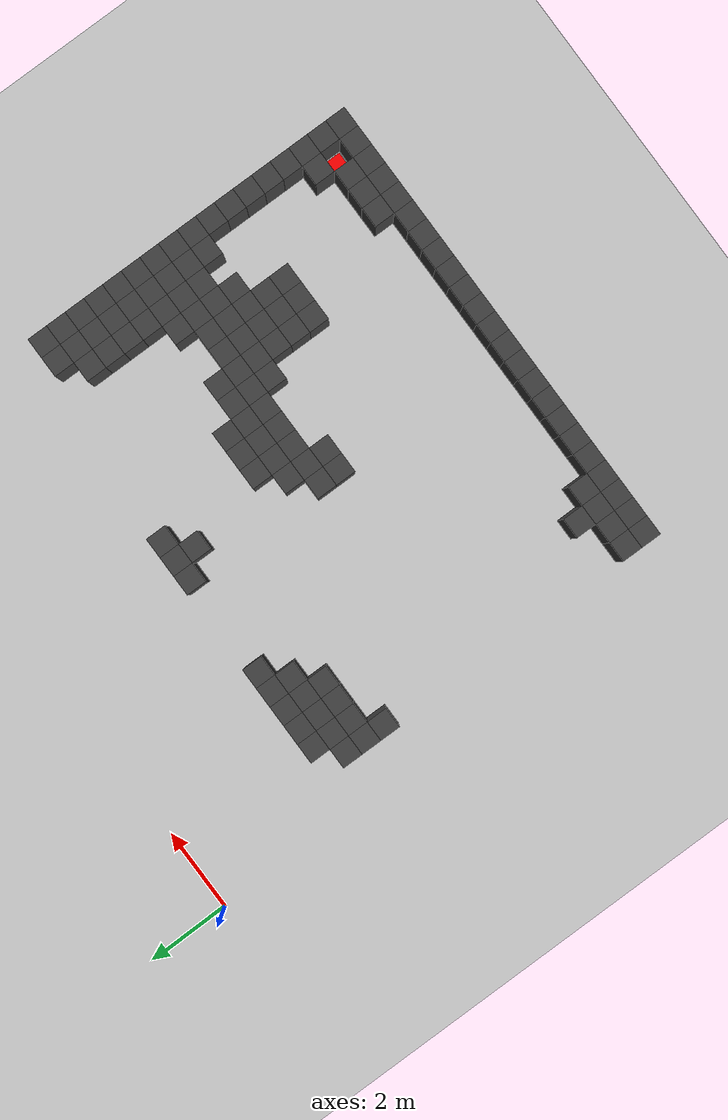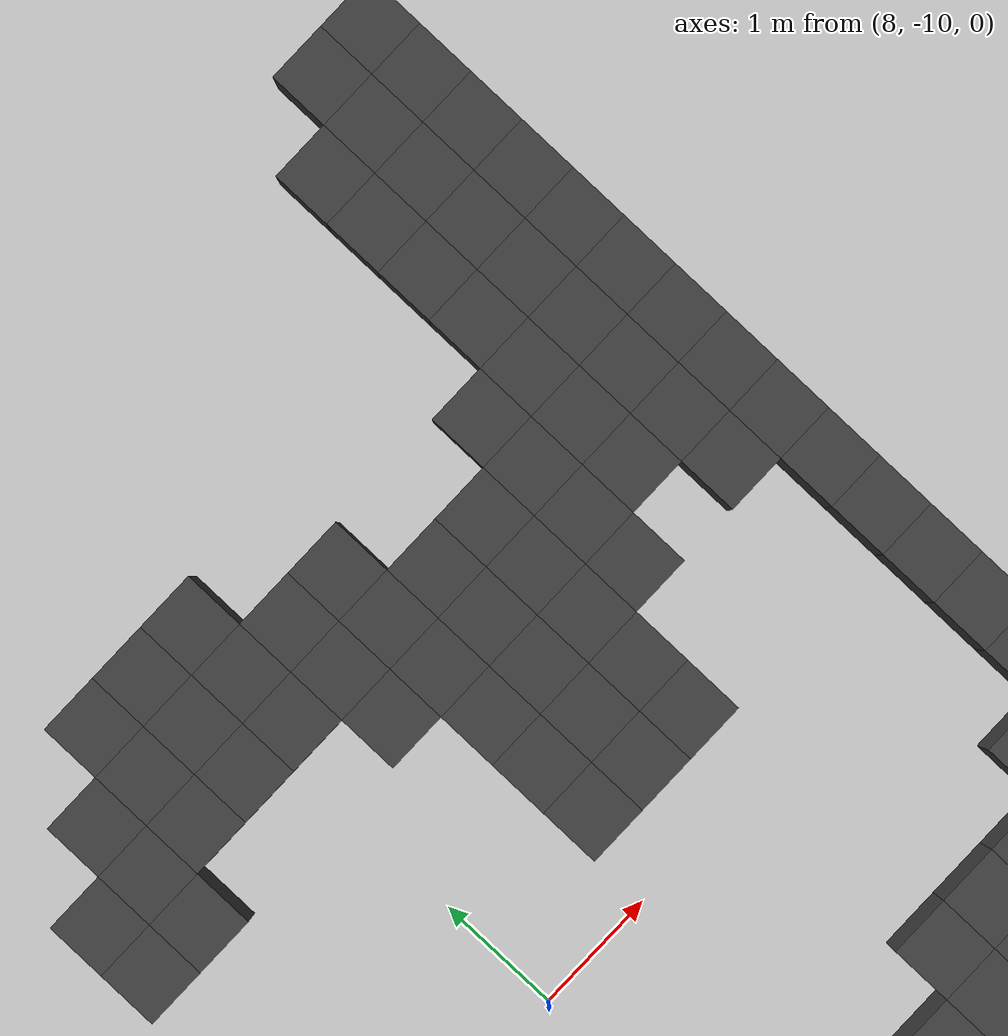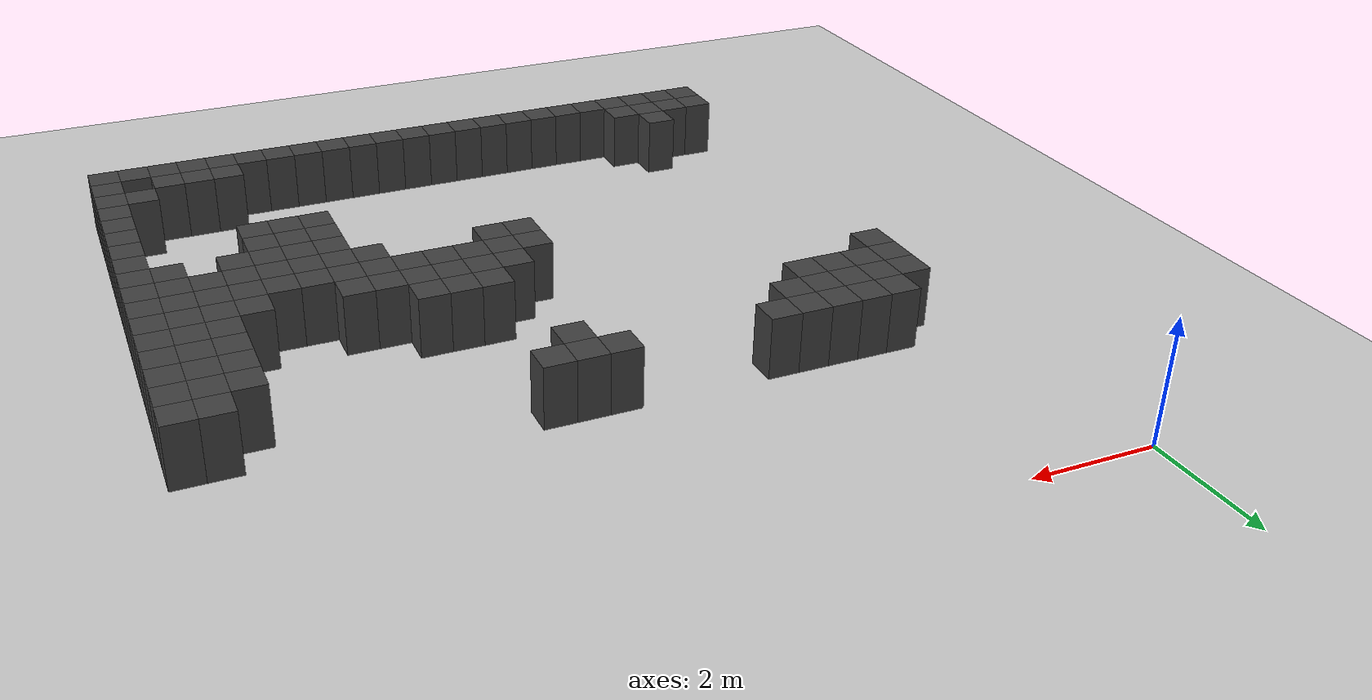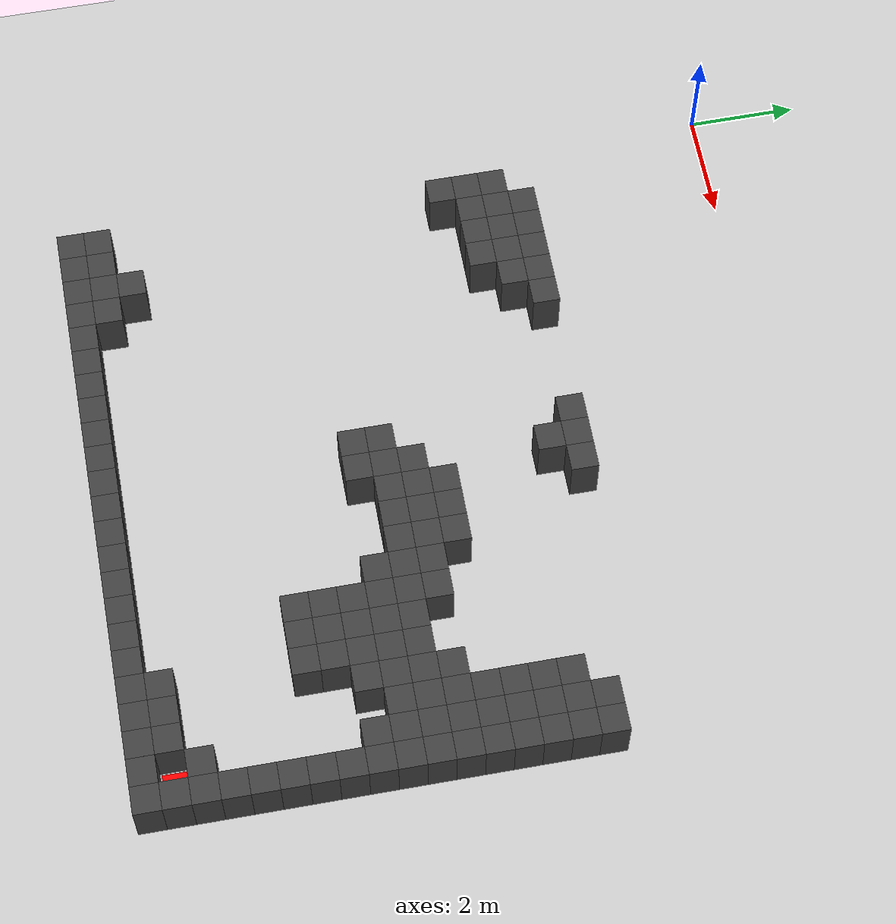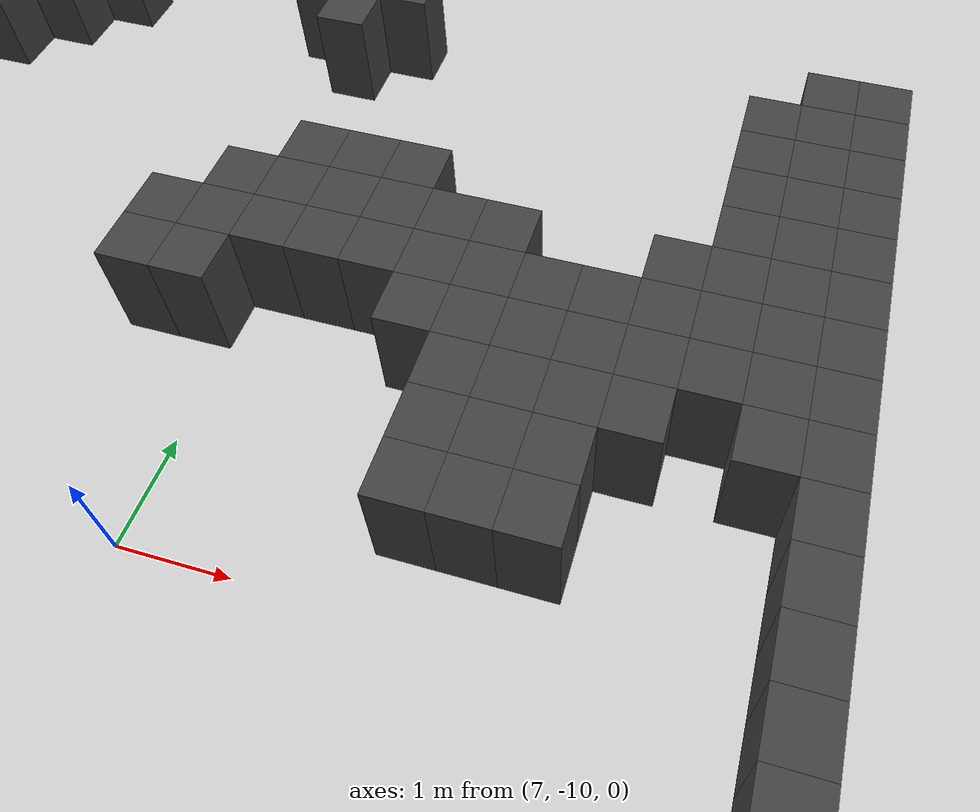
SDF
<sdf version="1.7">
 <world name="map_8661">
  <model name="ground_plane">
   <static>true</static>
   <link name="link">
    <collision name="collision">
     <geometry><plane><normal>0 0 1</normal><size>200 200</size></plane></geometry>
    </collision>
    <visual name="visual">
     <geometry><plane><normal>0 0 1</normal><size>200 200</size></plane></geometry>
     <material><ambient>0.8 0.8 0.8 1</ambient><diffuse>0.8 0.8 0.8 1</diffuse></material>
    </visual>
   </link>
  </model>
  <model name="maze_environment">
   <static>true</static>
   <link name="wall_462">
    <pose>1.750 -3.750 0.500 0 0 0</pose>
    <collision name="col"><geometry><box><size>0.5 0.5 1.0</size></box></geometry></collision>
    <visual name="vis">
     <geometry><box><size>0.5 0.5 1.0</size></box></geometry>
     <material><ambient>0.15 0.15 0.15 1</ambient><diffuse>0.25 0.25 0.25 1</diffuse></material>
    </visual>
   </link>
   <link name="wall_463">
    <pose>2.250 -3.750 0.500 0 0 0</pose>
    <collision name="col"><geometry><box><size>0.5 0.5 1.0</size></box></geometry></collision>
    <visual name="vis">
     <geometry><box><size>0.5 0.5 1.0</size></box></geometry>
     <material><ambient>0.15 0.15 0.15 1</ambient><diffuse>0.25 0.25 0.25 1</diffuse></material>
    </visual>
   </link>
   <link name="wall_464">
    <pose>2.750 -3.750 0.500 0 0 0</pose>
    <collision name="col"><geometry><box><size>0.5 0.5 1.0</size></box></geometry></collision>
    <visual name="vis">
     <geometry><box><size>0.5 0.5 1.0</size></box></geometry>
     <material><ambient>0.15 0.15 0.15 1</ambient><diffuse>0.25 0.25 0.25 1</diffuse></material>
    </visual>
   </link>
   <link name="wall_465">
    <pose>3.250 -3.750 0.500 0 0 0</pose>
    <collision name="col"><geometry><box><size>0.5 0.5 1.0</size></box></geometry></collision>
    <visual name="vis">
     <geometry><box><size>0.5 0.5 1.0</size></box></geometry>
     <material><ambient>0.15 0.15 0.15 1</ambient><diffuse>0.25 0.25 0.25 1</diffuse></material>
    </visual>
   </link>
   <link name="wall_466">
    <pose>3.750 -3.750 0.500 0 0 0</pose>
    <collision name="col"><geometry><box><size>0.5 0.5 1.0</size></box></geometry></collision>
    <visual name="vis">
     <geometry><box><size>0.5 0.5 1.0</size></box></geometry>
     <material><ambient>0.15 0.15 0.15 1</ambient><diffuse>0.25 0.25 0.25 1</diffuse></material>
    </visual>
   </link>
   <link name="wall_467">
    <pose>6.250 -3.750 0.500 0 0 0</pose>
    <collision name="col"><geometry><box><size>0.5 0.5 1.0</size></box></geometry></collision>
    <visual name="vis">
     <geometry><box><size>0.5 0.5 1.0</size></box></geometry>
     <material><ambient>0.15 0.15 0.15 1</ambient><diffuse>0.25 0.25 0.25 1</diffuse></material>
    </visual>
   </link>
   <link name="wall_468">
    <pose>6.750 -3.750 0.500 0 0 0</pose>
    <collision name="col"><geometry><box><size>0.5 0.5 1.0</size></box></geometry></collision>
    <visual name="vis">
     <geometry><box><size>0.5 0.5 1.0</size></box></geometry>
     <material><ambient>0.15 0.15 0.15 1</ambient><diffuse>0.25 0.25 0.25 1</diffuse></material>
    </visual>
   </link>
   <link name="wall_469">
    <pose>7.250 -3.750 0.500 0 0 0</pose>
    <collision name="col"><geometry><box><size>0.5 0.5 1.0</size></box></geometry></collision>
    <visual name="vis">
     <geometry><box><size>0.5 0.5 1.0</size></box></geometry>
     <material><ambient>0.15 0.15 0.15 1</ambient><diffuse>0.25 0.25 0.25 1</diffuse></material>
    </visual>
   </link>
   <link name="wall_478">
    <pose>1.250 -4.250 0.500 0 0 0</pose>
    <collision name="col"><geometry><box><size>0.5 0.5 1.0</size></box></geometry></collision>
    <visual name="vis">
     <geometry><box><size>0.5 0.5 1.0</size></box></geometry>
     <material><ambient>0.15 0.15 0.15 1</ambient><diffuse>0.25 0.25 0.25 1</diffuse></material>
    </visual>
   </link>
   <link name="wall_479">
    <pose>1.750 -4.250 0.500 0 0 0</pose>
    <collision name="col"><geometry><box><size>0.5 0.5 1.0</size></box></geometry></collision>
    <visual name="vis">
     <geometry><box><size>0.5 0.5 1.0</size></box></geometry>
     <material><ambient>0.15 0.15 0.15 1</ambient><diffuse>0.25 0.25 0.25 1</diffuse></material>
    </visual>
   </link>
   <link name="wall_480">
    <pose>2.250 -4.250 0.500 0 0 0</pose>
    <collision name="col"><geometry><box><size>0.5 0.5 1.0</size></box></geometry></collision>
    <visual name="vis">
     <geometry><box><size>0.5 0.5 1.0</size></box></geometry>
     <material><ambient>0.15 0.15 0.15 1</ambient><diffuse>0.25 0.25 0.25 1</diffuse></material>
    </visual>
   </link>
   <link name="wall_481">
    <pose>2.750 -4.250 0.500 0 0 0</pose>
    <collision name="col"><geometry><box><size>0.5 0.5 1.0</size></box></geometry></collision>
    <visual name="vis">
     <geometry><box><size>0.5 0.5 1.0</size></box></geometry>
     <material><ambient>0.15 0.15 0.15 1</ambient><diffuse>0.25 0.25 0.25 1</diffuse></material>
    </visual>
   </link>
   <link name="wall_482">
    <pose>3.250 -4.250 0.500 0 0 0</pose>
    <collision name="col"><geometry><box><size>0.5 0.5 1.0</size></box></geometry></collision>
    <visual name="vis">
     <geometry><box><size>0.5 0.5 1.0</size></box></geometry>
     <material><ambient>0.15 0.15 0.15 1</ambient><diffuse>0.25 0.25 0.25 1</diffuse></material>
    </visual>
   </link>
   <link name="wall_483">
    <pose>6.750 -4.250 0.500 0 0 0</pose>
    <collision name="col"><geometry><box><size>0.5 0.5 1.0</size></box></geometry></collision>
    <visual name="vis">
     <geometry><box><size>0.5 0.5 1.0</size></box></geometry>
     <material><ambient>0.15 0.15 0.15 1</ambient><diffuse>0.25 0.25 0.25 1</diffuse></material>
    </visual>
   </link>
   <link name="wall_484">
    <pose>11.750 -4.250 0.500 0 0 0</pose>
    <collision name="col"><geometry><box><size>0.5 0.5 1.0</size></box></geometry></collision>
    <visual name="vis">
     <geometry><box><size>0.5 0.5 1.0</size></box></geometry>
     <material><ambient>0.15 0.15 0.15 1</ambient><diffuse>0.25 0.25 0.25 1</diffuse></material>
    </visual>
   </link>
   <link name="wall_485">
    <pose>12.250 -4.250 0.500 0 0 0</pose>
    <collision name="col"><geometry><box><size>0.5 0.5 1.0</size></box></geometry></collision>
    <visual name="vis">
     <geometry><box><size>0.5 0.5 1.0</size></box></geometry>
     <material><ambient>0.15 0.15 0.15 1</ambient><diffuse>0.25 0.25 0.25 1</diffuse></material>
    </visual>
   </link>
   <link name="wall_493">
    <pose>1.250 -4.750 0.500 0 0 0</pose>
    <collision name="col"><geometry><box><size>0.5 0.5 1.0</size></box></geometry></collision>
    <visual name="vis">
     <geometry><box><size>0.5 0.5 1.0</size></box></geometry>
     <material><ambient>0.15 0.15 0.15 1</ambient><diffuse>0.25 0.25 0.25 1</diffuse></material>
    </visual>
   </link>
   <link name="wall_494">
    <pose>1.750 -4.750 0.500 0 0 0</pose>
    <collision name="col"><geometry><box><size>0.5 0.5 1.0</size></box></geometry></collision>
    <visual name="vis">
     <geometry><box><size>0.5 0.5 1.0</size></box></geometry>
     <material><ambient>0.15 0.15 0.15 1</ambient><diffuse>0.25 0.25 0.25 1</diffuse></material>
    </visual>
   </link>
   <link name="wall_495">
    <pose>2.250 -4.750 0.500 0 0 0</pose>
    <collision name="col"><geometry><box><size>0.5 0.5 1.0</size></box></geometry></collision>
    <visual name="vis">
     <geometry><box><size>0.5 0.5 1.0</size></box></geometry>
     <material><ambient>0.15 0.15 0.15 1</ambient><diffuse>0.25 0.25 0.25 1</diffuse></material>
    </visual>
   </link>
   <link name="wall_496">
    <pose>2.750 -4.750 0.500 0 0 0</pose>
    <collision name="col"><geometry><box><size>0.5 0.5 1.0</size></box></geometry></collision>
    <visual name="vis">
     <geometry><box><size>0.5 0.5 1.0</size></box></geometry>
     <material><ambient>0.15 0.15 0.15 1</ambient><diffuse>0.25 0.25 0.25 1</diffuse></material>
    </visual>
   </link>
   <link name="wall_497">
    <pose>11.250 -4.750 0.500 0 0 0</pose>
    <collision name="col"><geometry><box><size>0.5 0.5 1.0</size></box></geometry></collision>
    <visual name="vis">
     <geometry><box><size>0.5 0.5 1.0</size></box></geometry>
     <material><ambient>0.15 0.15 0.15 1</ambient><diffuse>0.25 0.25 0.25 1</diffuse></material>
    </visual>
   </link>
   <link name="wall_498">
    <pose>11.750 -4.750 0.500 0 0 0</pose>
    <collision name="col"><geometry><box><size>0.5 0.5 1.0</size></box></geometry></collision>
    <visual name="vis">
     <geometry><box><size>0.5 0.5 1.0</size></box></geometry>
     <material><ambient>0.15 0.15 0.15 1</ambient><diffuse>0.25 0.25 0.25 1</diffuse></material>
    </visual>
   </link>
   <link name="wall_499">
    <pose>12.250 -4.750 0.500 0 0 0</pose>
    <collision name="col"><geometry><box><size>0.5 0.5 1.0</size></box></geometry></collision>
    <visual name="vis">
     <geometry><box><size>0.5 0.5 1.0</size></box></geometry>
     <material><ambient>0.15 0.15 0.15 1</ambient><diffuse>0.25 0.25 0.25 1</diffuse></material>
    </visual>
   </link>
   <link name="wall_508">
    <pose>1.250 -5.250 0.500 0 0 0</pose>
    <collision name="col"><geometry><box><size>0.5 0.5 1.0</size></box></geometry></collision>
    <visual name="vis">
     <geometry><box><size>0.5 0.5 1.0</size></box></geometry>
     <material><ambient>0.15 0.15 0.15 1</ambient><diffuse>0.25 0.25 0.25 1</diffuse></material>
    </visual>
   </link>
   <link name="wall_509">
    <pose>11.250 -5.250 0.500 0 0 0</pose>
    <collision name="col"><geometry><box><size>0.5 0.5 1.0</size></box></geometry></collision>
    <visual name="vis">
     <geometry><box><size>0.5 0.5 1.0</size></box></geometry>
     <material><ambient>0.15 0.15 0.15 1</ambient><diffuse>0.25 0.25 0.25 1</diffuse></material>
    </visual>
   </link>
   <link name="wall_510">
    <pose>11.750 -5.250 0.500 0 0 0</pose>
    <collision name="col"><geometry><box><size>0.5 0.5 1.0</size></box></geometry></collision>
    <visual name="vis">
     <geometry><box><size>0.5 0.5 1.0</size></box></geometry>
     <material><ambient>0.15 0.15 0.15 1</ambient><diffuse>0.25 0.25 0.25 1</diffuse></material>
    </visual>
   </link>
   <link name="wall_511">
    <pose>12.250 -5.250 0.500 0 0 0</pose>
    <collision name="col"><geometry><box><size>0.5 0.5 1.0</size></box></geometry></collision>
    <visual name="vis">
     <geometry><box><size>0.5 0.5 1.0</size></box></geometry>
     <material><ambient>0.15 0.15 0.15 1</ambient><diffuse>0.25 0.25 0.25 1</diffuse></material>
    </visual>
   </link>
   <link name="wall_520">
    <pose>11.250 -5.750 0.500 0 0 0</pose>
    <collision name="col"><geometry><box><size>0.5 0.5 1.0</size></box></geometry></collision>
    <visual name="vis">
     <geometry><box><size>0.5 0.5 1.0</size></box></geometry>
     <material><ambient>0.15 0.15 0.15 1</ambient><diffuse>0.25 0.25 0.25 1</diffuse></material>
    </visual>
   </link>
   <link name="wall_521">
    <pose>11.750 -5.750 0.500 0 0 0</pose>
    <collision name="col"><geometry><box><size>0.5 0.5 1.0</size></box></geometry></collision>
    <visual name="vis">
     <geometry><box><size>0.5 0.5 1.0</size></box></geometry>
     <material><ambient>0.15 0.15 0.15 1</ambient><diffuse>0.25 0.25 0.25 1</diffuse></material>
    </visual>
   </link>
   <link name="wall_522">
    <pose>12.250 -5.750 0.500 0 0 0</pose>
    <collision name="col"><geometry><box><size>0.5 0.5 1.0</size></box></geometry></collision>
    <visual name="vis">
     <geometry><box><size>0.5 0.5 1.0</size></box></geometry>
     <material><ambient>0.15 0.15 0.15 1</ambient><diffuse>0.25 0.25 0.25 1</diffuse></material>
    </visual>
   </link>
   <link name="wall_531">
    <pose>7.250 -6.250 0.500 0 0 0</pose>
    <collision name="col"><geometry><box><size>0.5 0.5 1.0</size></box></geometry></collision>
    <visual name="vis">
     <geometry><box><size>0.5 0.5 1.0</size></box></geometry>
     <material><ambient>0.15 0.15 0.15 1</ambient><diffuse>0.25 0.25 0.25 1</diffuse></material>
    </visual>
   </link>
   <link name="wall_532">
    <pose>7.750 -6.250 0.500 0 0 0</pose>
    <collision name="col"><geometry><box><size>0.5 0.5 1.0</size></box></geometry></collision>
    <visual name="vis">
     <geometry><box><size>0.5 0.5 1.0</size></box></geometry>
     <material><ambient>0.15 0.15 0.15 1</ambient><diffuse>0.25 0.25 0.25 1</diffuse></material>
    </visual>
   </link>
   <link name="wall_533">
    <pose>8.250 -6.250 0.500 0 0 0</pose>
    <collision name="col"><geometry><box><size>0.5 0.5 1.0</size></box></geometry></collision>
    <visual name="vis">
     <geometry><box><size>0.5 0.5 1.0</size></box></geometry>
     <material><ambient>0.15 0.15 0.15 1</ambient><diffuse>0.25 0.25 0.25 1</diffuse></material>
    </visual>
   </link>
   <link name="wall_534">
    <pose>11.250 -6.250 0.500 0 0 0</pose>
    <collision name="col"><geometry><box><size>0.5 0.5 1.0</size></box></geometry></collision>
    <visual name="vis">
     <geometry><box><size>0.5 0.5 1.0</size></box></geometry>
     <material><ambient>0.15 0.15 0.15 1</ambient><diffuse>0.25 0.25 0.25 1</diffuse></material>
    </visual>
   </link>
   <link name="wall_535">
    <pose>11.750 -6.250 0.500 0 0 0</pose>
    <collision name="col"><geometry><box><size>0.5 0.5 1.0</size></box></geometry></collision>
    <visual name="vis">
     <geometry><box><size>0.5 0.5 1.0</size></box></geometry>
     <material><ambient>0.15 0.15 0.15 1</ambient><diffuse>0.25 0.25 0.25 1</diffuse></material>
    </visual>
   </link>
   <link name="wall_536">
    <pose>12.250 -6.250 0.500 0 0 0</pose>
    <collision name="col"><geometry><box><size>0.5 0.5 1.0</size></box></geometry></collision>
    <visual name="vis">
     <geometry><box><size>0.5 0.5 1.0</size></box></geometry>
     <material><ambient>0.15 0.15 0.15 1</ambient><diffuse>0.25 0.25 0.25 1</diffuse></material>
    </visual>
   </link>
   <link name="wall_545">
    <pose>6.750 -6.750 0.500 0 0 0</pose>
    <collision name="col"><geometry><box><size>0.5 0.5 1.0</size></box></geometry></collision>
    <visual name="vis">
     <geometry><box><size>0.5 0.5 1.0</size></box></geometry>
     <material><ambient>0.15 0.15 0.15 1</ambient><diffuse>0.25 0.25 0.25 1</diffuse></material>
    </visual>
   </link>
   <link name="wall_546">
    <pose>7.250 -6.750 0.500 0 0 0</pose>
    <collision name="col"><geometry><box><size>0.5 0.5 1.0</size></box></geometry></collision>
    <visual name="vis">
     <geometry><box><size>0.5 0.5 1.0</size></box></geometry>
     <material><ambient>0.15 0.15 0.15 1</ambient><diffuse>0.25 0.25 0.25 1</diffuse></material>
    </visual>
   </link>
   <link name="wall_547">
    <pose>7.750 -6.750 0.500 0 0 0</pose>
    <collision name="col"><geometry><box><size>0.5 0.5 1.0</size></box></geometry></collision>
    <visual name="vis">
     <geometry><box><size>0.5 0.5 1.0</size></box></geometry>
     <material><ambient>0.15 0.15 0.15 1</ambient><diffuse>0.25 0.25 0.25 1</diffuse></material>
    </visual>
   </link>
   <link name="wall_548">
    <pose>8.250 -6.750 0.500 0 0 0</pose>
    <collision name="col"><geometry><box><size>0.5 0.5 1.0</size></box></geometry></collision>
    <visual name="vis">
     <geometry><box><size>0.5 0.5 1.0</size></box></geometry>
     <material><ambient>0.15 0.15 0.15 1</ambient><diffuse>0.25 0.25 0.25 1</diffuse></material>
    </visual>
   </link>
   <link name="wall_549">
    <pose>8.750 -6.750 0.500 0 0 0</pose>
    <collision name="col"><geometry><box><size>0.5 0.5 1.0</size></box></geometry></collision>
    <visual name="vis">
     <geometry><box><size>0.5 0.5 1.0</size></box></geometry>
     <material><ambient>0.15 0.15 0.15 1</ambient><diffuse>0.25 0.25 0.25 1</diffuse></material>
    </visual>
   </link>
   <link name="wall_550">
    <pose>9.250 -6.750 0.500 0 0 0</pose>
    <collision name="col"><geometry><box><size>0.5 0.5 1.0</size></box></geometry></collision>
    <visual name="vis">
     <geometry><box><size>0.5 0.5 1.0</size></box></geometry>
     <material><ambient>0.15 0.15 0.15 1</ambient><diffuse>0.25 0.25 0.25 1</diffuse></material>
    </visual>
   </link>
   <link name="wall_551">
    <pose>10.750 -6.750 0.500 0 0 0</pose>
    <collision name="col"><geometry><box><size>0.5 0.5 1.0</size></box></geometry></collision>
    <visual name="vis">
     <geometry><box><size>0.5 0.5 1.0</size></box></geometry>
     <material><ambient>0.15 0.15 0.15 1</ambient><diffuse>0.25 0.25 0.25 1</diffuse></material>
    </visual>
   </link>
   <link name="wall_552">
    <pose>11.250 -6.750 0.500 0 0 0</pose>
    <collision name="col"><geometry><box><size>0.5 0.5 1.0</size></box></geometry></collision>
    <visual name="vis">
     <geometry><box><size>0.5 0.5 1.0</size></box></geometry>
     <material><ambient>0.15 0.15 0.15 1</ambient><diffuse>0.25 0.25 0.25 1</diffuse></material>
    </visual>
   </link>
   <link name="wall_553">
    <pose>11.750 -6.750 0.500 0 0 0</pose>
    <collision name="col"><geometry><box><size>0.5 0.5 1.0</size></box></geometry></collision>
    <visual name="vis">
     <geometry><box><size>0.5 0.5 1.0</size></box></geometry>
     <material><ambient>0.15 0.15 0.15 1</ambient><diffuse>0.25 0.25 0.25 1</diffuse></material>
    </visual>
   </link>
   <link name="wall_554">
    <pose>12.250 -6.750 0.500 0 0 0</pose>
    <collision name="col"><geometry><box><size>0.5 0.5 1.0</size></box></geometry></collision>
    <visual name="vis">
     <geometry><box><size>0.5 0.5 1.0</size></box></geometry>
     <material><ambient>0.15 0.15 0.15 1</ambient><diffuse>0.25 0.25 0.25 1</diffuse></material>
    </visual>
   </link>
   <link name="wall_564">
    <pose>6.250 -7.250 0.500 0 0 0</pose>
    <collision name="col"><geometry><box><size>0.5 0.5 1.0</size></box></geometry></collision>
    <visual name="vis">
     <geometry><box><size>0.5 0.5 1.0</size></box></geometry>
     <material><ambient>0.15 0.15 0.15 1</ambient><diffuse>0.25 0.25 0.25 1</diffuse></material>
    </visual>
   </link>
   <link name="wall_565">
    <pose>6.750 -7.250 0.500 0 0 0</pose>
    <collision name="col"><geometry><box><size>0.5 0.5 1.0</size></box></geometry></collision>
    <visual name="vis">
     <geometry><box><size>0.5 0.5 1.0</size></box></geometry>
     <material><ambient>0.15 0.15 0.15 1</ambient><diffuse>0.25 0.25 0.25 1</diffuse></material>
    </visual>
   </link>
   <link name="wall_566">
    <pose>7.250 -7.250 0.500 0 0 0</pose>
    <collision name="col"><geometry><box><size>0.5 0.5 1.0</size></box></geometry></collision>
    <visual name="vis">
     <geometry><box><size>0.5 0.5 1.0</size></box></geometry>
     <material><ambient>0.15 0.15 0.15 1</ambient><diffuse>0.25 0.25 0.25 1</diffuse></material>
    </visual>
   </link>
   <link name="wall_567">
    <pose>7.750 -7.250 0.500 0 0 0</pose>
    <collision name="col"><geometry><box><size>0.5 0.5 1.0</size></box></geometry></collision>
    <visual name="vis">
     <geometry><box><size>0.5 0.5 1.0</size></box></geometry>
     <material><ambient>0.15 0.15 0.15 1</ambient><diffuse>0.25 0.25 0.25 1</diffuse></material>
    </visual>
   </link>
   <link name="wall_568">
    <pose>8.250 -7.250 0.500 0 0 0</pose>
    <collision name="col"><geometry><box><size>0.5 0.5 1.0</size></box></geometry></collision>
    <visual name="vis">
     <geometry><box><size>0.5 0.5 1.0</size></box></geometry>
     <material><ambient>0.15 0.15 0.15 1</ambient><diffuse>0.25 0.25 0.25 1</diffuse></material>
    </visual>
   </link>
   <link name="wall_569">
    <pose>8.750 -7.250 0.500 0 0 0</pose>
    <collision name="col"><geometry><box><size>0.5 0.5 1.0</size></box></geometry></collision>
    <visual name="vis">
     <geometry><box><size>0.5 0.5 1.0</size></box></geometry>
     <material><ambient>0.15 0.15 0.15 1</ambient><diffuse>0.25 0.25 0.25 1</diffuse></material>
    </visual>
   </link>
   <link name="wall_570">
    <pose>9.250 -7.250 0.500 0 0 0</pose>
    <collision name="col"><geometry><box><size>0.5 0.5 1.0</size></box></geometry></collision>
    <visual name="vis">
     <geometry><box><size>0.5 0.5 1.0</size></box></geometry>
     <material><ambient>0.15 0.15 0.15 1</ambient><diffuse>0.25 0.25 0.25 1</diffuse></material>
    </visual>
   </link>
   <link name="wall_571">
    <pose>9.750 -7.250 0.500 0 0 0</pose>
    <collision name="col"><geometry><box><size>0.5 0.5 1.0</size></box></geometry></collision>
    <visual name="vis">
     <geometry><box><size>0.5 0.5 1.0</size></box></geometry>
     <material><ambient>0.15 0.15 0.15 1</ambient><diffuse>0.25 0.25 0.25 1</diffuse></material>
    </visual>
   </link>
   <link name="wall_572">
    <pose>10.250 -7.250 0.500 0 0 0</pose>
    <collision name="col"><geometry><box><size>0.5 0.5 1.0</size></box></geometry></collision>
    <visual name="vis">
     <geometry><box><size>0.5 0.5 1.0</size></box></geometry>
     <material><ambient>0.15 0.15 0.15 1</ambient><diffuse>0.25 0.25 0.25 1</diffuse></material>
    </visual>
   </link>
   <link name="wall_573">
    <pose>10.750 -7.250 0.500 0 0 0</pose>
    <collision name="col"><geometry><box><size>0.5 0.5 1.0</size></box></geometry></collision>
    <visual name="vis">
     <geometry><box><size>0.5 0.5 1.0</size></box></geometry>
     <material><ambient>0.15 0.15 0.15 1</ambient><diffuse>0.25 0.25 0.25 1</diffuse></material>
    </visual>
   </link>
   <link name="wall_574">
    <pose>11.250 -7.250 0.500 0 0 0</pose>
    <collision name="col"><geometry><box><size>0.5 0.5 1.0</size></box></geometry></collision>
    <visual name="vis">
     <geometry><box><size>0.5 0.5 1.0</size></box></geometry>
     <material><ambient>0.15 0.15 0.15 1</ambient><diffuse>0.25 0.25 0.25 1</diffuse></material>
    </visual>
   </link>
   <link name="wall_575">
    <pose>11.750 -7.250 0.500 0 0 0</pose>
    <collision name="col"><geometry><box><size>0.5 0.5 1.0</size></box></geometry></collision>
    <visual name="vis">
     <geometry><box><size>0.5 0.5 1.0</size></box></geometry>
     <material><ambient>0.15 0.15 0.15 1</ambient><diffuse>0.25 0.25 0.25 1</diffuse></material>
    </visual>
   </link>
   <link name="wall_576">
    <pose>12.250 -7.250 0.500 0 0 0</pose>
    <collision name="col"><geometry><box><size>0.5 0.5 1.0</size></box></geometry></collision>
    <visual name="vis">
     <geometry><box><size>0.5 0.5 1.0</size></box></geometry>
     <material><ambient>0.15 0.15 0.15 1</ambient><diffuse>0.25 0.25 0.25 1</diffuse></material>
    </visual>
   </link>
   <link name="wall_586">
    <pose>6.250 -7.750 0.500 0 0 0</pose>
    <collision name="col"><geometry><box><size>0.5 0.5 1.0</size></box></geometry></collision>
    <visual name="vis">
     <geometry><box><size>0.5 0.5 1.0</size></box></geometry>
     <material><ambient>0.15 0.15 0.15 1</ambient><diffuse>0.25 0.25 0.25 1</diffuse></material>
    </visual>
   </link>
   <link name="wall_587">
    <pose>6.750 -7.750 0.500 0 0 0</pose>
    <collision name="col"><geometry><box><size>0.5 0.5 1.0</size></box></geometry></collision>
    <visual name="vis">
     <geometry><box><size>0.5 0.5 1.0</size></box></geometry>
     <material><ambient>0.15 0.15 0.15 1</ambient><diffuse>0.25 0.25 0.25 1</diffuse></material>
    </visual>
   </link>
   <link name="wall_588">
    <pose>8.750 -7.750 0.500 0 0 0</pose>
    <collision name="col"><geometry><box><size>0.5 0.5 1.0</size></box></geometry></collision>
    <visual name="vis">
     <geometry><box><size>0.5 0.5 1.0</size></box></geometry>
     <material><ambient>0.15 0.15 0.15 1</ambient><diffuse>0.25 0.25 0.25 1</diffuse></material>
    </visual>
   </link>
   <link name="wall_589">
    <pose>9.250 -7.750 0.500 0 0 0</pose>
    <collision name="col"><geometry><box><size>0.5 0.5 1.0</size></box></geometry></collision>
    <visual name="vis">
     <geometry><box><size>0.5 0.5 1.0</size></box></geometry>
     <material><ambient>0.15 0.15 0.15 1</ambient><diffuse>0.25 0.25 0.25 1</diffuse></material>
    </visual>
   </link>
   <link name="wall_590">
    <pose>9.750 -7.750 0.500 0 0 0</pose>
    <collision name="col"><geometry><box><size>0.5 0.5 1.0</size></box></geometry></collision>
    <visual name="vis">
     <geometry><box><size>0.5 0.5 1.0</size></box></geometry>
     <material><ambient>0.15 0.15 0.15 1</ambient><diffuse>0.25 0.25 0.25 1</diffuse></material>
    </visual>
   </link>
   <link name="wall_591">
    <pose>10.250 -7.750 0.500 0 0 0</pose>
    <collision name="col"><geometry><box><size>0.5 0.5 1.0</size></box></geometry></collision>
    <visual name="vis">
     <geometry><box><size>0.5 0.5 1.0</size></box></geometry>
     <material><ambient>0.15 0.15 0.15 1</ambient><diffuse>0.25 0.25 0.25 1</diffuse></material>
    </visual>
   </link>
   <link name="wall_592">
    <pose>10.750 -7.750 0.500 0 0 0</pose>
    <collision name="col"><geometry><box><size>0.5 0.5 1.0</size></box></geometry></collision>
    <visual name="vis">
     <geometry><box><size>0.5 0.5 1.0</size></box></geometry>
     <material><ambient>0.15 0.15 0.15 1</ambient><diffuse>0.25 0.25 0.25 1</diffuse></material>
    </visual>
   </link>
   <link name="wall_593">
    <pose>11.250 -7.750 0.500 0 0 0</pose>
    <collision name="col"><geometry><box><size>0.5 0.5 1.0</size></box></geometry></collision>
    <visual name="vis">
     <geometry><box><size>0.5 0.5 1.0</size></box></geometry>
     <material><ambient>0.15 0.15 0.15 1</ambient><diffuse>0.25 0.25 0.25 1</diffuse></material>
    </visual>
   </link>
   <link name="wall_594">
    <pose>11.750 -7.750 0.500 0 0 0</pose>
    <collision name="col"><geometry><box><size>0.5 0.5 1.0</size></box></geometry></collision>
    <visual name="vis">
     <geometry><box><size>0.5 0.5 1.0</size></box></geometry>
     <material><ambient>0.15 0.15 0.15 1</ambient><diffuse>0.25 0.25 0.25 1</diffuse></material>
    </visual>
   </link>
   <link name="wall_595">
    <pose>12.250 -7.750 0.500 0 0 0</pose>
    <collision name="col"><geometry><box><size>0.5 0.5 1.0</size></box></geometry></collision>
    <visual name="vis">
     <geometry><box><size>0.5 0.5 1.0</size></box></geometry>
     <material><ambient>0.15 0.15 0.15 1</ambient><diffuse>0.25 0.25 0.25 1</diffuse></material>
    </visual>
   </link>
   <link name="wall_604">
    <pose>9.250 -8.250 0.500 0 0 0</pose>
    <collision name="col"><geometry><box><size>0.5 0.5 1.0</size></box></geometry></collision>
    <visual name="vis">
     <geometry><box><size>0.5 0.5 1.0</size></box></geometry>
     <material><ambient>0.15 0.15 0.15 1</ambient><diffuse>0.25 0.25 0.25 1</diffuse></material>
    </visual>
   </link>
   <link name="wall_605">
    <pose>9.750 -8.250 0.500 0 0 0</pose>
    <collision name="col"><geometry><box><size>0.5 0.5 1.0</size></box></geometry></collision>
    <visual name="vis">
     <geometry><box><size>0.5 0.5 1.0</size></box></geometry>
     <material><ambient>0.15 0.15 0.15 1</ambient><diffuse>0.25 0.25 0.25 1</diffuse></material>
    </visual>
   </link>
   <link name="wall_606">
    <pose>10.250 -8.250 0.500 0 0 0</pose>
    <collision name="col"><geometry><box><size>0.5 0.5 1.0</size></box></geometry></collision>
    <visual name="vis">
     <geometry><box><size>0.5 0.5 1.0</size></box></geometry>
     <material><ambient>0.15 0.15 0.15 1</ambient><diffuse>0.25 0.25 0.25 1</diffuse></material>
    </visual>
   </link>
   <link name="wall_607">
    <pose>10.750 -8.250 0.500 0 0 0</pose>
    <collision name="col"><geometry><box><size>0.5 0.5 1.0</size></box></geometry></collision>
    <visual name="vis">
     <geometry><box><size>0.5 0.5 1.0</size></box></geometry>
     <material><ambient>0.15 0.15 0.15 1</ambient><diffuse>0.25 0.25 0.25 1</diffuse></material>
    </visual>
   </link>
   <link name="wall_608">
    <pose>11.750 -8.250 0.500 0 0 0</pose>
    <collision name="col"><geometry><box><size>0.5 0.5 1.0</size></box></geometry></collision>
    <visual name="vis">
     <geometry><box><size>0.5 0.5 1.0</size></box></geometry>
     <material><ambient>0.15 0.15 0.15 1</ambient><diffuse>0.25 0.25 0.25 1</diffuse></material>
    </visual>
   </link>
   <link name="wall_609">
    <pose>12.250 -8.250 0.500 0 0 0</pose>
    <collision name="col"><geometry><box><size>0.5 0.5 1.0</size></box></geometry></collision>
    <visual name="vis">
     <geometry><box><size>0.5 0.5 1.0</size></box></geometry>
     <material><ambient>0.15 0.15 0.15 1</ambient><diffuse>0.25 0.25 0.25 1</diffuse></material>
    </visual>
   </link>
   <link name="wall_617">
    <pose>9.250 -8.750 0.500 0 0 0</pose>
    <collision name="col"><geometry><box><size>0.5 0.5 1.0</size></box></geometry></collision>
    <visual name="vis">
     <geometry><box><size>0.5 0.5 1.0</size></box></geometry>
     <material><ambient>0.15 0.15 0.15 1</ambient><diffuse>0.25 0.25 0.25 1</diffuse></material>
    </visual>
   </link>
   <link name="wall_618">
    <pose>9.750 -8.750 0.500 0 0 0</pose>
    <collision name="col"><geometry><box><size>0.5 0.5 1.0</size></box></geometry></collision>
    <visual name="vis">
     <geometry><box><size>0.5 0.5 1.0</size></box></geometry>
     <material><ambient>0.15 0.15 0.15 1</ambient><diffuse>0.25 0.25 0.25 1</diffuse></material>
    </visual>
   </link>
   <link name="wall_619">
    <pose>10.250 -8.750 0.500 0 0 0</pose>
    <collision name="col"><geometry><box><size>0.5 0.5 1.0</size></box></geometry></collision>
    <visual name="vis">
     <geometry><box><size>0.5 0.5 1.0</size></box></geometry>
     <material><ambient>0.15 0.15 0.15 1</ambient><diffuse>0.25 0.25 0.25 1</diffuse></material>
    </visual>
   </link>
   <link name="wall_620">
    <pose>12.250 -8.750 0.500 0 0 0</pose>
    <collision name="col"><geometry><box><size>0.5 0.5 1.0</size></box></geometry></collision>
    <visual name="vis">
     <geometry><box><size>0.5 0.5 1.0</size></box></geometry>
     <material><ambient>0.15 0.15 0.15 1</ambient><diffuse>0.25 0.25 0.25 1</diffuse></material>
    </visual>
   </link>
   <link name="wall_628">
    <pose>9.250 -9.250 0.500 0 0 0</pose>
    <collision name="col"><geometry><box><size>0.5 0.5 1.0</size></box></geometry></collision>
    <visual name="vis">
     <geometry><box><size>0.5 0.5 1.0</size></box></geometry>
     <material><ambient>0.15 0.15 0.15 1</ambient><diffuse>0.25 0.25 0.25 1</diffuse></material>
    </visual>
   </link>
   <link name="wall_629">
    <pose>9.750 -9.250 0.500 0 0 0</pose>
    <collision name="col"><geometry><box><size>0.5 0.5 1.0</size></box></geometry></collision>
    <visual name="vis">
     <geometry><box><size>0.5 0.5 1.0</size></box></geometry>
     <material><ambient>0.15 0.15 0.15 1</ambient><diffuse>0.25 0.25 0.25 1</diffuse></material>
    </visual>
   </link>
   <link name="wall_630">
    <pose>10.250 -9.250 0.500 0 0 0</pose>
    <collision name="col"><geometry><box><size>0.5 0.5 1.0</size></box></geometry></collision>
    <visual name="vis">
     <geometry><box><size>0.5 0.5 1.0</size></box></geometry>
     <material><ambient>0.15 0.15 0.15 1</ambient><diffuse>0.25 0.25 0.25 1</diffuse></material>
    </visual>
   </link>
   <link name="wall_631">
    <pose>12.250 -9.250 0.500 0 0 0</pose>
    <collision name="col"><geometry><box><size>0.5 0.5 1.0</size></box></geometry></collision>
    <visual name="vis">
     <geometry><box><size>0.5 0.5 1.0</size></box></geometry>
     <material><ambient>0.15 0.15 0.15 1</ambient><diffuse>0.25 0.25 0.25 1</diffuse></material>
    </visual>
   </link>
   <link name="wall_637">
    <pose>12.250 -9.750 0.500 0 0 0</pose>
    <collision name="col"><geometry><box><size>0.5 0.5 1.0</size></box></geometry></collision>
    <visual name="vis">
     <geometry><box><size>0.5 0.5 1.0</size></box></geometry>
     <material><ambient>0.15 0.15 0.15 1</ambient><diffuse>0.25 0.25 0.25 1</diffuse></material>
    </visual>
   </link>
   <link name="wall_640">
    <pose>12.250 -10.250 0.500 0 0 0</pose>
    <collision name="col"><geometry><box><size>0.5 0.5 1.0</size></box></geometry></collision>
    <visual name="vis">
     <geometry><box><size>0.5 0.5 1.0</size></box></geometry>
     <material><ambient>0.15 0.15 0.15 1</ambient><diffuse>0.25 0.25 0.25 1</diffuse></material>
    </visual>
   </link>
   <link name="wall_645">
    <pose>12.250 -10.750 0.500 0 0 0</pose>
    <collision name="col"><geometry><box><size>0.5 0.5 1.0</size></box></geometry></collision>
    <visual name="vis">
     <geometry><box><size>0.5 0.5 1.0</size></box></geometry>
     <material><ambient>0.15 0.15 0.15 1</ambient><diffuse>0.25 0.25 0.25 1</diffuse></material>
    </visual>
   </link>
   <link name="wall_651">
    <pose>2.250 -11.250 0.500 0 0 0</pose>
    <collision name="col"><geometry><box><size>0.5 0.5 1.0</size></box></geometry></collision>
    <visual name="vis">
     <geometry><box><size>0.5 0.5 1.0</size></box></geometry>
     <material><ambient>0.15 0.15 0.15 1</ambient><diffuse>0.25 0.25 0.25 1</diffuse></material>
    </visual>
   </link>
   <link name="wall_652">
    <pose>11.750 -11.250 0.500 0 0 0</pose>
    <collision name="col"><geometry><box><size>0.5 0.5 1.0</size></box></geometry></collision>
    <visual name="vis">
     <geometry><box><size>0.5 0.5 1.0</size></box></geometry>
     <material><ambient>0.15 0.15 0.15 1</ambient><diffuse>0.25 0.25 0.25 1</diffuse></material>
    </visual>
   </link>
   <link name="wall_653">
    <pose>12.250 -11.250 0.500 0 0 0</pose>
    <collision name="col"><geometry><box><size>0.5 0.5 1.0</size></box></geometry></collision>
    <visual name="vis">
     <geometry><box><size>0.5 0.5 1.0</size></box></geometry>
     <material><ambient>0.15 0.15 0.15 1</ambient><diffuse>0.25 0.25 0.25 1</diffuse></material>
    </visual>
   </link>
   <link name="wall_666">
    <pose>1.250 -11.750 0.500 0 0 0</pose>
    <collision name="col"><geometry><box><size>0.5 0.5 1.0</size></box></geometry></collision>
    <visual name="vis">
     <geometry><box><size>0.5 0.5 1.0</size></box></geometry>
     <material><ambient>0.15 0.15 0.15 1</ambient><diffuse>0.25 0.25 0.25 1</diffuse></material>
    </visual>
   </link>
   <link name="wall_667">
    <pose>1.750 -11.750 0.500 0 0 0</pose>
    <collision name="col"><geometry><box><size>0.5 0.5 1.0</size></box></geometry></collision>
    <visual name="vis">
     <geometry><box><size>0.5 0.5 1.0</size></box></geometry>
     <material><ambient>0.15 0.15 0.15 1</ambient><diffuse>0.25 0.25 0.25 1</diffuse></material>
    </visual>
   </link>
   <link name="wall_668">
    <pose>2.250 -11.750 0.500 0 0 0</pose>
    <collision name="col"><geometry><box><size>0.5 0.5 1.0</size></box></geometry></collision>
    <visual name="vis">
     <geometry><box><size>0.5 0.5 1.0</size></box></geometry>
     <material><ambient>0.15 0.15 0.15 1</ambient><diffuse>0.25 0.25 0.25 1</diffuse></material>
    </visual>
   </link>
   <link name="wall_669">
    <pose>2.750 -11.750 0.500 0 0 0</pose>
    <collision name="col"><geometry><box><size>0.5 0.5 1.0</size></box></geometry></collision>
    <visual name="vis">
     <geometry><box><size>0.5 0.5 1.0</size></box></geometry>
     <material><ambient>0.15 0.15 0.15 1</ambient><diffuse>0.25 0.25 0.25 1</diffuse></material>
    </visual>
   </link>
   <link name="wall_670">
    <pose>10.250 -11.750 0.500 0 0 0</pose>
    <collision name="col"><geometry><box><size>0.5 0.5 1.0</size></box></geometry></collision>
    <visual name="vis">
     <geometry><box><size>0.5 0.5 1.0</size></box></geometry>
     <material><ambient>0.15 0.15 0.15 1</ambient><diffuse>0.25 0.25 0.25 1</diffuse></material>
    </visual>
   </link>
   <link name="wall_671">
    <pose>10.750 -11.750 0.500 0 0 0</pose>
    <collision name="col"><geometry><box><size>0.5 0.5 1.0</size></box></geometry></collision>
    <visual name="vis">
     <geometry><box><size>0.5 0.5 1.0</size></box></geometry>
     <material><ambient>0.15 0.15 0.15 1</ambient><diffuse>0.25 0.25 0.25 1</diffuse></material>
    </visual>
   </link>
   <link name="wall_672">
    <pose>11.250 -11.750 0.500 0 0 0</pose>
    <collision name="col"><geometry><box><size>0.5 0.5 1.0</size></box></geometry></collision>
    <visual name="vis">
     <geometry><box><size>0.5 0.5 1.0</size></box></geometry>
     <material><ambient>0.15 0.15 0.15 1</ambient><diffuse>0.25 0.25 0.25 1</diffuse></material>
    </visual>
   </link>
   <link name="wall_673">
    <pose>12.250 -11.750 0.500 0 0 0</pose>
    <collision name="col"><geometry><box><size>0.5 0.5 1.0</size></box></geometry></collision>
    <visual name="vis">
     <geometry><box><size>0.5 0.5 1.0</size></box></geometry>
     <material><ambient>0.15 0.15 0.15 1</ambient><diffuse>0.25 0.25 0.25 1</diffuse></material>
    </visual>
   </link>
   <link name="wall_701">
    <pose>1.250 -12.250 0.500 0 0 0</pose>
    <collision name="col"><geometry><box><size>0.5 0.5 1.0</size></box></geometry></collision>
    <visual name="vis">
     <geometry><box><size>0.5 0.5 1.0</size></box></geometry>
     <material><ambient>0.15 0.15 0.15 1</ambient><diffuse>0.25 0.25 0.25 1</diffuse></material>
    </visual>
   </link>
   <link name="wall_702">
    <pose>1.750 -12.250 0.500 0 0 0</pose>
    <collision name="col"><geometry><box><size>0.5 0.5 1.0</size></box></geometry></collision>
    <visual name="vis">
     <geometry><box><size>0.5 0.5 1.0</size></box></geometry>
     <material><ambient>0.15 0.15 0.15 1</ambient><diffuse>0.25 0.25 0.25 1</diffuse></material>
    </visual>
   </link>
   <link name="wall_703">
    <pose>2.250 -12.250 0.500 0 0 0</pose>
    <collision name="col"><geometry><box><size>0.5 0.5 1.0</size></box></geometry></collision>
    <visual name="vis">
     <geometry><box><size>0.5 0.5 1.0</size></box></geometry>
     <material><ambient>0.15 0.15 0.15 1</ambient><diffuse>0.25 0.25 0.25 1</diffuse></material>
    </visual>
   </link>
   <link name="wall_704">
    <pose>2.750 -12.250 0.500 0 0 0</pose>
    <collision name="col"><geometry><box><size>0.5 0.5 1.0</size></box></geometry></collision>
    <visual name="vis">
     <geometry><box><size>0.5 0.5 1.0</size></box></geometry>
     <material><ambient>0.15 0.15 0.15 1</ambient><diffuse>0.25 0.25 0.25 1</diffuse></material>
    </visual>
   </link>
   <link name="wall_705">
    <pose>3.250 -12.250 0.500 0 0 0</pose>
    <collision name="col"><geometry><box><size>0.5 0.5 1.0</size></box></geometry></collision>
    <visual name="vis">
     <geometry><box><size>0.5 0.5 1.0</size></box></geometry>
     <material><ambient>0.15 0.15 0.15 1</ambient><diffuse>0.25 0.25 0.25 1</diffuse></material>
    </visual>
   </link>
   <link name="wall_706">
    <pose>3.750 -12.250 0.500 0 0 0</pose>
    <collision name="col"><geometry><box><size>0.5 0.5 1.0</size></box></geometry></collision>
    <visual name="vis">
     <geometry><box><size>0.5 0.5 1.0</size></box></geometry>
     <material><ambient>0.15 0.15 0.15 1</ambient><diffuse>0.25 0.25 0.25 1</diffuse></material>
    </visual>
   </link>
   <link name="wall_707">
    <pose>4.250 -12.250 0.500 0 0 0</pose>
    <collision name="col"><geometry><box><size>0.5 0.5 1.0</size></box></geometry></collision>
    <visual name="vis">
     <geometry><box><size>0.5 0.5 1.0</size></box></geometry>
     <material><ambient>0.15 0.15 0.15 1</ambient><diffuse>0.25 0.25 0.25 1</diffuse></material>
    </visual>
   </link>
   <link name="wall_708">
    <pose>4.750 -12.250 0.500 0 0 0</pose>
    <collision name="col"><geometry><box><size>0.5 0.5 1.0</size></box></geometry></collision>
    <visual name="vis">
     <geometry><box><size>0.5 0.5 1.0</size></box></geometry>
     <material><ambient>0.15 0.15 0.15 1</ambient><diffuse>0.25 0.25 0.25 1</diffuse></material>
    </visual>
   </link>
   <link name="wall_709">
    <pose>5.250 -12.250 0.500 0 0 0</pose>
    <collision name="col"><geometry><box><size>0.5 0.5 1.0</size></box></geometry></collision>
    <visual name="vis">
     <geometry><box><size>0.5 0.5 1.0</size></box></geometry>
     <material><ambient>0.15 0.15 0.15 1</ambient><diffuse>0.25 0.25 0.25 1</diffuse></material>
    </visual>
   </link>
   <link name="wall_710">
    <pose>5.750 -12.250 0.500 0 0 0</pose>
    <collision name="col"><geometry><box><size>0.5 0.5 1.0</size></box></geometry></collision>
    <visual name="vis">
     <geometry><box><size>0.5 0.5 1.0</size></box></geometry>
     <material><ambient>0.15 0.15 0.15 1</ambient><diffuse>0.25 0.25 0.25 1</diffuse></material>
    </visual>
   </link>
   <link name="wall_711">
    <pose>6.250 -12.250 0.500 0 0 0</pose>
    <collision name="col"><geometry><box><size>0.5 0.5 1.0</size></box></geometry></collision>
    <visual name="vis">
     <geometry><box><size>0.5 0.5 1.0</size></box></geometry>
     <material><ambient>0.15 0.15 0.15 1</ambient><diffuse>0.25 0.25 0.25 1</diffuse></material>
    </visual>
   </link>
   <link name="wall_712">
    <pose>6.750 -12.250 0.500 0 0 0</pose>
    <collision name="col"><geometry><box><size>0.5 0.5 1.0</size></box></geometry></collision>
    <visual name="vis">
     <geometry><box><size>0.5 0.5 1.0</size></box></geometry>
     <material><ambient>0.15 0.15 0.15 1</ambient><diffuse>0.25 0.25 0.25 1</diffuse></material>
    </visual>
   </link>
   <link name="wall_713">
    <pose>7.250 -12.250 0.500 0 0 0</pose>
    <collision name="col"><geometry><box><size>0.5 0.5 1.0</size></box></geometry></collision>
    <visual name="vis">
     <geometry><box><size>0.5 0.5 1.0</size></box></geometry>
     <material><ambient>0.15 0.15 0.15 1</ambient><diffuse>0.25 0.25 0.25 1</diffuse></material>
    </visual>
   </link>
   <link name="wall_714">
    <pose>7.750 -12.250 0.500 0 0 0</pose>
    <collision name="col"><geometry><box><size>0.5 0.5 1.0</size></box></geometry></collision>
    <visual name="vis">
     <geometry><box><size>0.5 0.5 1.0</size></box></geometry>
     <material><ambient>0.15 0.15 0.15 1</ambient><diffuse>0.25 0.25 0.25 1</diffuse></material>
    </visual>
   </link>
   <link name="wall_715">
    <pose>8.250 -12.250 0.500 0 0 0</pose>
    <collision name="col"><geometry><box><size>0.5 0.5 1.0</size></box></geometry></collision>
    <visual name="vis">
     <geometry><box><size>0.5 0.5 1.0</size></box></geometry>
     <material><ambient>0.15 0.15 0.15 1</ambient><diffuse>0.25 0.25 0.25 1</diffuse></material>
    </visual>
   </link>
   <link name="wall_716">
    <pose>8.750 -12.250 0.500 0 0 0</pose>
    <collision name="col"><geometry><box><size>0.5 0.5 1.0</size></box></geometry></collision>
    <visual name="vis">
     <geometry><box><size>0.5 0.5 1.0</size></box></geometry>
     <material><ambient>0.15 0.15 0.15 1</ambient><diffuse>0.25 0.25 0.25 1</diffuse></material>
    </visual>
   </link>
   <link name="wall_717">
    <pose>9.250 -12.250 0.500 0 0 0</pose>
    <collision name="col"><geometry><box><size>0.5 0.5 1.0</size></box></geometry></collision>
    <visual name="vis">
     <geometry><box><size>0.5 0.5 1.0</size></box></geometry>
     <material><ambient>0.15 0.15 0.15 1</ambient><diffuse>0.25 0.25 0.25 1</diffuse></material>
    </visual>
   </link>
   <link name="wall_718">
    <pose>9.750 -12.250 0.500 0 0 0</pose>
    <collision name="col"><geometry><box><size>0.5 0.5 1.0</size></box></geometry></collision>
    <visual name="vis">
     <geometry><box><size>0.5 0.5 1.0</size></box></geometry>
     <material><ambient>0.15 0.15 0.15 1</ambient><diffuse>0.25 0.25 0.25 1</diffuse></material>
    </visual>
   </link>
   <link name="wall_719">
    <pose>10.250 -12.250 0.500 0 0 0</pose>
    <collision name="col"><geometry><box><size>0.5 0.5 1.0</size></box></geometry></collision>
    <visual name="vis">
     <geometry><box><size>0.5 0.5 1.0</size></box></geometry>
     <material><ambient>0.15 0.15 0.15 1</ambient><diffuse>0.25 0.25 0.25 1</diffuse></material>
    </visual>
   </link>
   <link name="wall_720">
    <pose>10.750 -12.250 0.500 0 0 0</pose>
    <collision name="col"><geometry><box><size>0.5 0.5 1.0</size></box></geometry></collision>
    <visual name="vis">
     <geometry><box><size>0.5 0.5 1.0</size></box></geometry>
     <material><ambient>0.15 0.15 0.15 1</ambient><diffuse>0.25 0.25 0.25 1</diffuse></material>
    </visual>
   </link>
   <link name="wall_721">
    <pose>11.250 -12.250 0.500 0 0 0</pose>
    <collision name="col"><geometry><box><size>0.5 0.5 1.0</size></box></geometry></collision>
    <visual name="vis">
     <geometry><box><size>0.5 0.5 1.0</size></box></geometry>
     <material><ambient>0.15 0.15 0.15 1</ambient><diffuse>0.25 0.25 0.25 1</diffuse></material>
    </visual>
   </link>
   <link name="wall_722">
    <pose>11.750 -12.250 0.500 0 0 0</pose>
    <collision name="col"><geometry><box><size>0.5 0.5 1.0</size></box></geometry></collision>
    <visual name="vis">
     <geometry><box><size>0.5 0.5 1.0</size></box></geometry>
     <material><ambient>0.15 0.15 0.15 1</ambient><diffuse>0.25 0.25 0.25 1</diffuse></material>
    </visual>
   </link>
   <link name="wall_723">
    <pose>12.250 -12.250 0.500 0 0 0</pose>
    <collision name="col"><geometry><box><size>0.5 0.5 1.0</size></box></geometry></collision>
    <visual name="vis">
     <geometry><box><size>0.5 0.5 1.0</size></box></geometry>
     <material><ambient>0.15 0.15 0.15 1</ambient><diffuse>0.25 0.25 0.25 1</diffuse></material>
    </visual>
   </link>
   <link name="goal_zone">
    <pose>11.750 -11.750 0.005 0 0 0</pose>
    <visual name="vis">
     <geometry><box><size>0.45 0.45 0.01</size></box></geometry>
     <material>
      <ambient>1.0 0.0 0.0 1</ambient>
      <diffuse>1.0 0.0 0.0 1</diffuse>
      <emissive>0.60 0.00 0.00 1</emissive>
     </material>
    </visual>
   </link>
  </model>
 </world>
</sdf>
